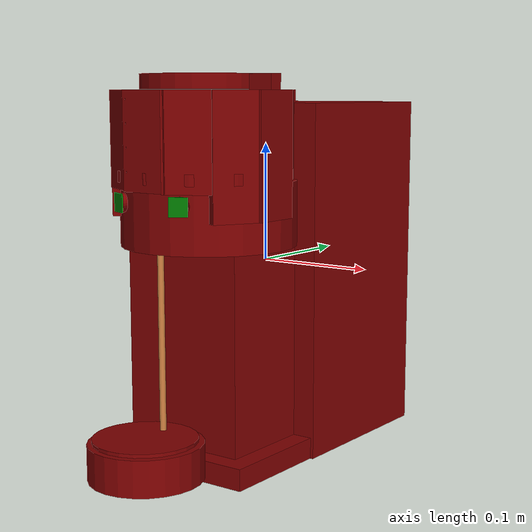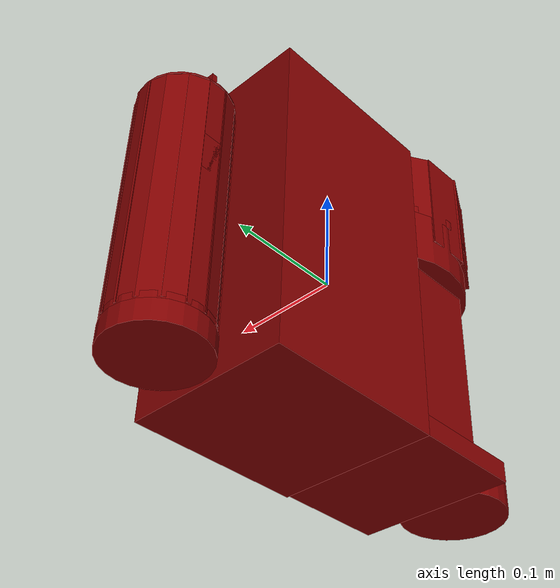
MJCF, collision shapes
<?xml version='1.0' encoding='UTF-8'?>
<mujoco model="model">
  <compiler angle="radian"/>
  <asset>
    <mesh file="visuals/Body001.obj" name="Body001_vis"/>
    <mesh file="visuals/Button001.obj" name="Button001_vis"/>
    <mesh file="visuals/Button002.obj" name="Button002_vis"/>
    <mesh file="visuals/Container001_Clear.obj" name="Container001_Clear_vis"/>
    <mesh file="visuals/Lid001.obj" name="Lid001_vis"/>
    <mesh file="visuals/Lid002.obj" name="Lid002_vis"/>
    <mesh file="visuals/Lid003.obj" name="Lid003_vis"/>
    <texture file="visuals/T_BC001.png" name="Body001_material" type="2d"/>
    <material name="Body001_material" rgba="1 1 1 1.0" texture="Body001_material" shininess="0.4472135901451111" specular="0.3103448502657381"/>
    <texture file="visuals/T_BC001.png" name="Button001_material" type="2d"/>
    <material name="Button001_material" rgba="1 1 1 1.0" texture="Button001_material" shininess="0.4472135901451111" specular="0.3103448502657381"/>
    <texture file="visuals/T_BC001.png" name="Button002_material" type="2d"/>
    <material name="Button002_material" rgba="1 1 1 1.0" texture="Button002_material" shininess="0.4472135901451111" specular="0.3103448502657381"/>
    <texture file="visuals/T_BC001.png" name="Container001_Clear_material" type="2d"/>
    <material name="Container001_Clear_material" rgba="1 1 1 0.04680854082107544" texture="Container001_Clear_material" shininess="0.4472135901451111" specular="0.3103448502657381"/>
    <texture file="visuals/T_BC001.png" name="Lid001_material" type="2d"/>
    <material name="Lid001_material" rgba="1 1 1 1.0" texture="Lid001_material" shininess="0.4472135901451111" specular="0.3103448502657381"/>
    <texture file="visuals/T_BC001.png" name="Lid002_material" type="2d"/>
    <material name="Lid002_material" rgba="1 1 1 1.0" texture="Lid002_material" shininess="0.4472135901451111" specular="0.3103448502657381"/>
    <texture file="visuals/T_BC001.png" name="Lid003_material" type="2d"/>
    <material name="Lid003_material" rgba="1 1 1 1.0" texture="Lid003_material" shininess="0.4472135901451111" specular="0.3103448502657381"/>
  </asset>
  <default>
    <default class="visual">
      <geom conaffinity="0" contype="0" group="1" type="mesh"/>
    </default>
    <default class="collision">
      <geom group="0" rgba="0.5 0 0 0.5"/>
    </default>
    <default class="spawn">
      <geom group="0" rgba="1 1 1 0.5" contype="0" conaffinity="0"/>
      <site group="0" rgba="1 1 1 0.5"/>
    </default>
    <default class="region">
      <geom group="1" conaffinity="0" contype="0" rgba="0 1 0 0"/>
    </default>
  </default>
  <worldbody>
    <body>
      <body name="object">
        <geom class="collision" type="box" pos="-0.030028 -0.150205 0.059374" size="0.00745377317070961 0.007453771773725748 0.0006153107970021665" quat="0.6908296942710876 0.6908298134803772 -0.15084503591060638 -0.1508450210094452" name="start_button_1" rgba="0.0 0.5 0 0.5"/>
        <geom class="collision" type="box" pos="0.030202 -0.150225 0.059434" size="0.00745377317070961 0.007453771773725748 0.0006153107970021665" quat="0.6903252005577087 0.6903253793716431 0.15313728153705597 0.1531372368335724" name="start_button_2" rgba="0.0 0.5 0 0.5"/>
        <site type="cylinder" rgba="0.8 0.5 0.25 1" size="0.0025999878998845816 0.08099177479743958" pos="-0.000012 -0.136572 -0.045933" name="coffee_liquid"/>
        <site rgba="0 0 0 0" size="0.009999999776482582 0.009999999776482582" pos="-0.000053 -0.136751 -0.119221" name="receptacle_place_site"/>
        <geom mesh="Body001_vis" type="mesh" solimp="0.998 0.998 0.001" solref="0.001 1" density="100" friction="0.95 0.3 0.1" class="visual" material="Body001_material"/>
        <geom class="collision" type="box" pos="0.001382 0.044250 -0.011368" size="0.07155651599168777 0.07745305448770523 0.14616787433624268" quat="1.0 0.0 0.0 0.0"/>
        <geom class="collision" type="box" pos="0.000129 -0.081256 -0.148735" size="0.07030323892831802 0.048140060156583786 0.008801165036857128" quat="1.0 0.0 0.0 0.0"/>
        <geom class="collision" type="box" pos="-0.000454 -0.073176 -0.059136" size="0.05402809754014015 0.04005999490618706 0.08209266513586044" quat="1.0 0.0 0.0 0.0"/>
        <geom class="collision" type="box" pos="0.000012 -0.067153 -0.059136" size="0.0061247264966368675 0.03403715044260025 0.08209266513586044" quat="1.0 0.0 0.0 0.0"/>
        <geom class="collision" type="cylinder" pos="0.001593 -0.158469 -0.137866" size="0.04566127061843872 0.014569255523383617" quat="1.0 0.0 0.0 0.0"/>
        <geom class="collision" type="cylinder" pos="-0.000001 -0.077274 0.047766" size="0.07117266207933426 0.02634253539144993" quat="1.0 0.0 0.0 0.0"/>
        <geom class="collision" type="cylinder" pos="-0.000001 -0.082718 0.078913" size="0.07117266207933426 0.0044973185285925865" quat="1.0 0.0 0.0 0.0"/>
        <geom class="collision" type="cylinder" pos="-0.000001 0.164191 -0.148658" size="0.04009465500712395 0.008819321170449257" quat="1.0 0.0 0.0 0.0"/>
        <geom class="collision" type="box" pos="-0.028640 -0.031871 0.095565" size="0.02024535834789276 0.012357999570667744 0.04943403974175453" quat="0.9644211530685425 0.0 0.0 0.2643706798553467"/>
        <geom class="collision" type="box" pos="-0.048931 -0.050915 0.095565" size="0.02024535834789276 0.012357999570667744 0.04943403974175453" quat="0.8735739588737488 0.0 0.0 0.486691415309906"/>
        <geom class="collision" type="box" pos="-0.058322 -0.080653 0.095565" size="0.02024535834789276 0.012357999570667744 0.04943403974175453" quat="0.7117714881896973 0.0 0.0 0.7024111151695251"/>
        <geom class="collision" type="box" pos="-0.051838 -0.109524 0.095565" size="0.02024535834789276 0.012357999570667744 0.04943403974175453" quat="0.5104440450668335 0.0 0.0 0.8599109649658203"/>
        <geom class="collision" type="box" pos="-0.029598 -0.133014 0.106923" size="0.02024535834789276 0.012357999570667744 0.038075633347034454" quat="0.2521234154701233 0.0 0.0 0.9676950573921204"/>
        <geom class="collision" type="box" pos="-0.000627 -0.141073 0.106784" size="0.020385123789310455 0.012588322162628174 0.03821500018239021" quat="1.0 0.0 0.0 0.0"/>
        <geom class="collision" type="box" pos="0.028586 -0.133595 0.106591" size="0.02024535834789276 0.012357999570667744 0.03840760141611099" quat="0.2638746201992035 0.0 -0.0 -0.9645569920539856"/>
        <geom class="collision" type="box" pos="0.050417 -0.112107 0.095565" size="0.02024535834789276 0.012357999570667744 0.04943403974175453" quat="0.5077721476554871 0.0 -0.0 -0.8614913821220398"/>
        <geom class="collision" type="box" pos="0.058357 -0.082608 0.095565" size="0.012841008603572845 0.020536525174975395 0.04943403974175453" quat="1.0 0.0 0.0 0.0"/>
        <geom class="collision" type="box" pos="0.049827 -0.052340 0.095565" size="0.02024535834789276 0.012357999570667744 0.04943403974175453" quat="0.8773074150085449 0.0 -0.0 -0.4799288809299469"/>
        <geom class="collision" type="box" pos="0.027222 -0.031099 0.095565" size="0.02024535834789276 0.012357999570667744 0.04943403974175453" quat="0.9733062982559204 0.0 -0.0 -0.22950996458530426"/>
        <geom class="collision" type="box" pos="0.001292 -0.024375 0.095565" size="0.02024535834789276 0.012357999570667744 0.04943403974175453" quat="1.0 0.0 0.0 0.0"/>
        <body name="Button001">
          <joint axis="0.4067366421222687 0.9135454297065735 0.0" pos="-0.029093 -0.148228 0.059445" limited="true" name="Button001_joint" range="0.0 0.003" type="slide" damping="1" frictionloss="1" armature=".01" stiffness="0.05"/>
          <geom mesh="Button001_vis" type="mesh" solimp="0.998 0.998 0.001" solref="0.001 1" density="100" friction="0.95 0.3 0.1" class="visual" material="Button001_material"/>
          <geom class="collision" type="cylinder" pos="-0.028910 -0.147767 0.059374" size="0.00745377317070961 0.0018070159712806344" quat="0.6908296942710876 0.6908298134803772 -0.15084503591060638 -0.1508450210094452"/>
        </body>
        <body name="Button002">
          <joint axis="-0.4067366421222687 0.9135454297065735 0.0" pos="0.029066 -0.148169 0.059445" limited="true" name="Button002_joint" range="0.0 0.003" type="slide" damping="1" frictionloss="1" armature=".01" stiffness="0.05"/>
          <geom mesh="Button002_vis" type="mesh" solimp="0.998 0.998 0.001" solref="0.001 1" density="100" friction="0.95 0.3 0.1" class="visual" material="Button002_material"/>
          <geom class="collision" type="cylinder" pos="0.029068 -0.147795 0.059434" size="0.00745377317070961 0.0018070159712806344" quat="0.6903252005577087 0.6903253793716431 0.15313728153705597 0.1531372368335724"/>
        </body>
        <body name="Container001_Clear">
          <joint axis="0.0 0.0 1.0" pos="-0.000008 0.164269 -0.032029" limited="true" name="Container001_Clear_joint" range="0.0 0.05" type="slide" damping="1" frictionloss="1" armature=".01" stiffness="0.05"/>
          <geom mesh="Container001_Clear_vis" type="mesh" solimp="0.998 0.998 0.001" solref="0.001 1" density="100" friction="0.95 0.3 0.1" class="visual" material="Container001_Clear_material"/>
          <geom class="collision" type="cylinder" pos="0.000072 0.164369 -0.136500" size="0.0393361821770668 0.002993212081491947" quat="1.0 0.0 0.0 0.0"/>
          <geom class="collision" type="box" pos="-0.036766 0.164893 -0.031907" size="0.0018441455904394388 0.008451677858829498 0.1062384843826294" quat="1.0 0.0 0.0 0.0"/>
          <geom class="collision" type="box" pos="-0.036766 0.164893 0.000003" size="0.0018441475694999099 0.008451677858829498 0.016558147966861725" quat="1.0 0.0 0.0 0.0"/>
          <geom class="collision" type="box" pos="-0.034297 0.151100 -0.031907" size="0.0018441455904394388 0.008451677858829498 0.10623849183320999" quat="0.9817522168159485 0.0 0.0 0.19016456604003906"/>
          <geom class="collision" type="box" pos="-0.026513 0.138863 -0.031907" size="0.0018441455904394388 0.008451677858829498 0.10623849183320999" quat="0.9251194596290588 0.0 0.0 0.3796762228012085"/>
          <geom class="collision" type="box" pos="-0.015036 0.130768 -0.031907" size="0.0018441455904394388 0.008451677858829498 0.1062384843826294" quat="0.8357836008071899 0.0 0.0 0.5490589737892151"/>
          <geom class="collision" type="box" pos="-0.004342 0.127793 -0.031907" size="0.0018441457068547606 0.008451678790152073 0.1062384843826294" quat="0.7435294985771179 0.0 0.0 0.6687031388282776"/>
          <geom class="collision" type="box" pos="0.010665 0.129083 -0.031907" size="0.0018441455904394388 0.008451677858829498 0.1062384843826294" quat="0.5911339521408081 0.0 0.0 0.8065733909606934"/>
          <geom class="collision" type="box" pos="0.024043 0.136393 -0.031907" size="0.0018441455904394388 0.008451677858829498 0.10623849183320999" quat="0.41145753860473633 0.0 0.0 0.9114289283752441"/>
          <geom class="collision" type="box" pos="0.033229 0.148309 -0.031907" size="0.0018441455904394388 0.008451677858829498 0.1062384843826294" quat="0.21667729318141937 0.0 0.0 0.976243257522583"/>
          <geom class="collision" type="box" pos="0.036905 0.163597 -0.031907" size="0.001900948933325708 0.008463891223073006 0.1062384694814682" quat="1.0 0.0 0.0 0.0"/>
          <geom class="collision" type="box" pos="0.034486 0.177520 -0.031907" size="0.0018441455904394388 0.008451677858829498 0.1062384843826294" quat="0.1884860396385193 0.0 -0.0 -0.9820758700370789"/>
          <geom class="collision" type="box" pos="0.027148 0.189352 -0.031907" size="0.0018441455904394388 0.008451677858829498 0.1062384843826294" quat="0.3706550598144531 0.0 -0.0 -0.9287706017494202"/>
          <geom class="collision" type="box" pos="0.016169 0.197507 -0.031907" size="0.0018441455904394388 0.008451677858829498 0.1062384694814682" quat="0.5366145372390747 0.0 -0.0 -0.843827486038208"/>
          <geom class="collision" type="box" pos="0.002937 0.201098 -0.031907" size="0.0018441455904394388 0.008451677858829498 0.1062384843826294" quat="0.6842595934867859 0.0 -0.0 -0.7292385101318359"/>
          <geom class="collision" type="box" pos="-0.010600 0.199631 -0.031907" size="0.0018441455904394388 0.008451677858829498 0.1062384694814682" quat="0.8072304725646973 0.0 -0.0 -0.5902363657951355"/>
          <geom class="collision" type="box" pos="-0.023848 0.192389 -0.031907" size="0.0018441455904394388 0.008451677858829498 0.1062384843826294" quat="0.9110468626022339 0.0 -0.0 -0.4123028516769409"/>
          <geom class="collision" type="box" pos="-0.033335 0.179902 -0.031907" size="0.0018441455904394388 0.008451677858829498 0.1062384843826294" quat="0.977924108505249 0.0 -0.0 -0.2089603841304779"/>
          <body name="Lid001">
            <joint axis="0.0 0.0 1.0" pos="-0.000008 0.164269 0.076285" limited="true" name="Lid001_joint" range="0.0 0.05" type="slide" damping="1" frictionloss="1" armature=".01" stiffness="0.05"/>
            <geom mesh="Lid001_vis" type="mesh" solimp="0.998 0.998 0.001" solref="0.001 1" density="100" friction="0.95 0.3 0.1" class="visual" material="Lid001_material"/>
            <geom class="collision" type="cylinder" pos="0.000008 0.164185 0.076327" size="0.03883073478937149 0.0007054820889607072" quat="1.0 0.0 0.0 0.0"/>
            <geom class="collision" type="box" pos="0.029803 0.164311 0.085082" size="0.0036717012990266085 0.0023889916483312845 0.008473222143948078" quat="1.0 0.0 0.0 0.0"/>
            <geom class="collision" type="box" pos="0.000643 0.164311 0.090370" size="0.025550926104187965 0.0023889916483312845 0.003185421694070101" quat="1.0 0.0 0.0 0.0"/>
            <geom class="collision" type="box" pos="-0.028440 0.164311 0.085082" size="0.0036717012990266085 0.0023889916483312845 0.008473222143948078" quat="1.0 0.0 0.0 0.0"/>
          </body>
        </body>
        <body name="Lid002">
          <joint axis="0.0 -1.0 0.0" pos="-0.049629 -0.082536 0.145969" limited="true" name="Lid002_joint" range="0.0 1.5707963267948966" type="hinge" damping="1" frictionloss="1" armature=".01" stiffness="0.05"/>
          <geom mesh="Lid002_vis" type="mesh" solimp="0.998 0.998 0.001" solref="0.001 1" density="100" friction="0.95 0.3 0.1" class="visual" material="Lid002_material"/>
          <geom class="collision" type="box" pos="0.059844 -0.082674 0.151049" size="0.0104537857696414 0.0061253877356648445 0.0061182258650660515" quat="1.0 0.0 0.0 0.0"/>
          <geom class="collision" type="cylinder" pos="-0.000527 -0.082881 0.151561" size="0.05014911666512489 0.005898127797991037" quat="1.0 0.0 0.0 0.0"/>
        </body>
        <body name="Lid003">
          <joint axis="0.0 0.0 1.0" pos="0.001366 -0.158739 -0.121924" limited="true" name="Lid003_joint" range="0.0 0.05" type="slide" damping="1" frictionloss="1" armature=".01" stiffness="0.05"/>
          <geom mesh="Lid003_vis" type="mesh" solimp="0.998 0.998 0.001" solref="0.001 1" density="100" friction="0.95 0.3 0.1" class="visual" material="Lid003_material"/>
          <geom class="collision" type="cylinder" pos="0.001408 -0.158960 -0.121132" size="0.04154263436794281 0.0014191875234246254" quat="1.0 0.0 0.0 0.0"/>
        </body>
        <geom class="region" name="reg_main" type="box" pos="-5.000000000005e-07 0.00013699999999999823 2.5000000000025002e-06" size="0.0706285 0.203511 0.1567715"/>
      </body>
    </body>
  </worldbody>
  <actuator>
    <motor name="Button001_joint_actuator" joint="Button001_joint" gear="0.5"/>
    <motor name="Button002_joint_actuator" joint="Button002_joint" gear="0.5"/>
    <motor name="Container001_Clear_joint_actuator" joint="Container001_Clear_joint" gear="10"/>
    <motor name="Lid002_joint_actuator" joint="Lid002_joint" gear="10"/>
    <motor name="Lid003_joint_actuator" joint="Lid003_joint" gear="10"/>
    <motor name="Lid001_joint_actuator" joint="Lid001_joint" gear="10"/>
  </actuator>
</mujoco>
